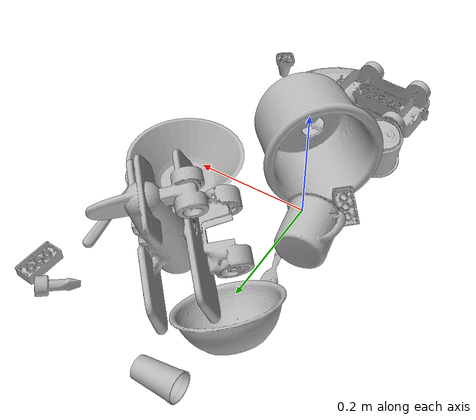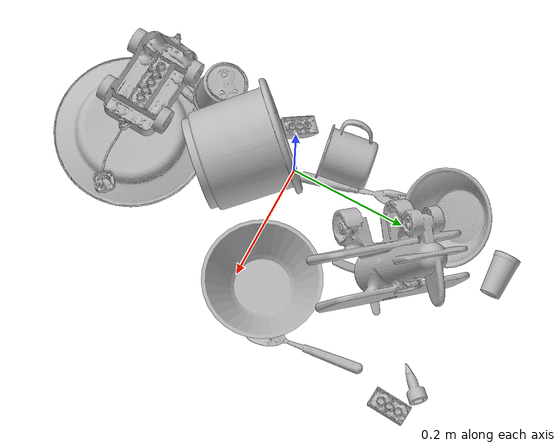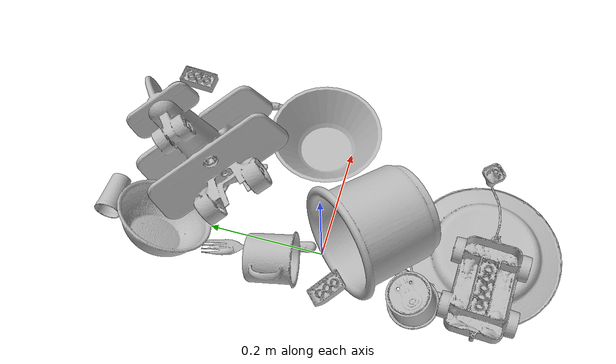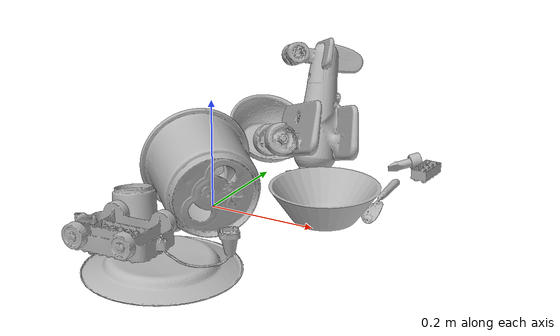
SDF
<sdf version="1.4">
  <world name="default">
    <light name="light1" type="point">
      <pose>0 0 1 0 0 0</pose>
      <diffuse>3 3 3 1</diffuse>
      <specular>3 3 3 1</specular>
    </light>
    <light name="light2" type="point">
      <pose>0 0.5 2 0 0 0</pose>
      <diffuse>1 1 1 1</diffuse>
      <specular>1 1 1 1</specular>
    </light>
    <light name="light3" type="point">
      <pose>0 0.5 2 0 0 0</pose>
      <diffuse>3 3 3 1</diffuse>
      <specular>3 3 3 1</specular>
    </light>
    <scene>
      <ambient>0.7 0.7 0.7</ambient>
    </scene>
    <model name="plate1">
      <link name="link_plate1">
        <collision name="default">
          <geometry>
            <mesh>
              <uri>model://plate/collision_meshes/collision.obj</uri>
              <scale>1.0 1.0 1.0</scale>
            </mesh>
          </geometry>
          <surface>
            <friction>
              <ode>
                <mu>0.5</mu>
                <mu2>0.5</mu2>
              </ode>
            </friction>
          <contact>
        <ode>
            <max_vel>0</max_vel>
            <min_depth>0.0001</min_depth>
            <kp>1e8</kp>
        </ode>
    </contact></surface>
        </collision>
        <visual name="default">
          <geometry>
            <mesh>
              <uri>model://plate/visual_meshes/visual.dae</uri>
              <scale>1.0 1.0 1.0</scale>
            </mesh>
          </geometry>
        </visual>
        <inertial>
          <mass>0.22833794355392456</mass>
          <pose>-0.000604461005423218 0.00027825840516015887 -0.0010561991948634386 0.0022188074693480237 -0.003225470002654536 0.4526028307495764</pose>
          <inertia>
            <ixx>0.0010681693</ixx>
            <iyy>0.0010579526</iyy>
            <izz>0.0020891798</izz>
            <ixy>0</ixy>
            <ixz>0</ixz>
            <iyz>0</iyz>
          </inertia>
        </inertial>
      </link>
      <pose>0.06969310343265533 -0.2687693238258362 0.013448810204863548 3.1414400193654908 -0.003168616341321804 2.7707951993928748</pose>
    </model>
    <model name="cup1">
      <link name="link_cup1">
        <collision name="default">
          <geometry>
            <mesh>
              <uri>model://i_cups/collision_meshes/collision.obj</uri>
              <scale>2.0 2.0 2.0</scale>
            </mesh>
          </geometry>
          <surface>
            <friction>
              <ode>
                <mu>0.5</mu>
                <mu2>0.5</mu2>
              </ode>
            </friction>
          <contact>
        <ode>
            <max_vel>0</max_vel>
            <min_depth>0.0001</min_depth>
            <kp>1e8</kp>
        </ode>
    </contact></surface>
        </collision>
        <visual name="default">
          <geometry>
            <mesh>
              <uri>model://i_cups/visual_meshes/visual.dae</uri>
              <scale>2.0 2.0 2.0</scale>
            </mesh>
          </geometry>
        </visual>
        <inertial>
          <mass>0.4681873917579651</mass>
          <pose>0.00022480281768366694 0.00033594679553061724 -0.001715805265121162 -0.028982833374769763 -0.039873302367341296 -0.3459182567321849</pose>
          <inertia>
            <ixx>0.0025928493</ixx>
            <iyy>0.0026156942</iyy>
            <izz>0.0028979292</izz>
            <ixy>0</ixy>
            <ixz>0</ixz>
            <iyz>0</iyz>
          </inertia>
        </inertial>
      </link>
      <pose>0.03518358990550041 -0.08204548805952072 0.09003017842769623 1.1089830732521964 1.2866918583978129 -2.7858019461776147</pose>
    </model>
    <model name="silverware1">
      <link name="link_silverware1">
        <collision name="default">
          <geometry>
            <mesh>
              <uri>model://fork/collision_meshes/collision.obj</uri>
              <scale>1.0 1.0 1.0</scale>
            </mesh>
          </geometry>
          <surface>
            <friction>
              <ode>
                <mu>0.5</mu>
                <mu2>0.5</mu2>
              </ode>
            </friction>
          <contact>
        <ode>
            <max_vel>0</max_vel>
            <min_depth>0.0001</min_depth>
            <kp>1e8</kp>
        </ode>
    </contact></surface>
        </collision>
        <visual name="default">
          <geometry>
            <mesh>
              <uri>model://fork/visual_meshes/visual.dae</uri>
              <scale>1.0 1.0 1.0</scale>
            </mesh>
          </geometry>
        </visual>
        <inertial>
          <mass>0.027571624144911766</mass>
          <pose>-0.02957003377377987 0.00046588233090005815 0.00032188609475269914 -0.013550958023284024 -0.010977835737993834 0.014453901364285019</pose>
          <inertia>
            <ixx>9.665413e-07</ixx>
            <iyy>7.198156e-05</iyy>
            <izz>7.24139e-05</izz>
            <ixy>0</ixy>
            <ixz>0</ixz>
            <iyz>0</iyz>
          </inertia>
        </inertial>
      </link>
      <pose>-0.017666148021817207 0.10724350810050964 0.005714460276067257 -0.18209713281753895 0.0248337688398305 1.8241166904947983</pose>
    </model>
    <model name="silverware2">
      <link name="link_silverware2">
        <collision name="default">
          <geometry>
            <mesh>
              <uri>model://spoon/collision_meshes/collision.obj</uri>
              <scale>1.0 1.0 1.0</scale>
            </mesh>
          </geometry>
          <surface>
            <friction>
              <ode>
                <mu>0.5</mu>
                <mu2>0.5</mu2>
              </ode>
            </friction>
          <contact>
        <ode>
            <max_vel>0</max_vel>
            <min_depth>0.0001</min_depth>
            <kp>1e8</kp>
        </ode>
    </contact></surface>
        </collision>
        <visual name="default">
          <geometry>
            <mesh>
              <uri>model://spoon/visual_meshes/visual.dae</uri>
              <scale>1.0 1.0 1.0</scale>
            </mesh>
          </geometry>
        </visual>
        <inertial>
          <mass>0.026229728013277054</mass>
          <pose>-0.005526318680495024 -0.001603417913429439 -0.0007271656068041921 0.03521671072465583 -0.039065837568760656 0.006150610113583586</pose>
          <inertia>
            <ixx>1.4589405e-06</ixx>
            <iyy>9.980327e-05</iyy>
            <izz>0.00010052276</izz>
            <ixy>0</ixy>
            <ixz>0</ixz>
            <iyz>0</iyz>
          </inertia>
        </inertial>
      </link>
      <pose>0.2582835257053375 0.15702052414417267 0.010201461613178253 -2.7145313872624484 -0.06175731713695301 -1.4279484366439132</pose>
    </model>
    <model name="silverware3">
      <link name="link_silverware3">
        <collision name="default">
          <geometry>
            <mesh>
              <uri>model://knife/collision_meshes/collision.obj</uri>
              <scale>1.0 1.0 1.0</scale>
            </mesh>
          </geometry>
          <surface>
            <friction>
              <ode>
                <mu>0.5</mu>
                <mu2>0.5</mu2>
              </ode>
            </friction>
          <contact>
        <ode>
            <max_vel>0</max_vel>
            <min_depth>0.0001</min_depth>
            <kp>1e8</kp>
        </ode>
    </contact></surface>
        </collision>
        <visual name="default">
          <geometry>
            <mesh>
              <uri>model://knife/visual_meshes/visual.dae</uri>
              <scale>1.0 1.0 1.0</scale>
            </mesh>
          </geometry>
        </visual>
        <inertial>
          <mass>0.02346421591937542</mass>
          <pose>-0.02378525584936142 0.0015275125624611974 5.062017953605391e-05 0.07305400797241687 0.017248417900584085 -0.007409820985288758</pose>
          <inertia>
            <ixx>6.6600956e-07</ixx>
            <iyy>9.0145724e-05</iyy>
            <izz>9.036023e-05</izz>
            <ixy>0</ixy>
            <ixz>0</ixz>
            <iyz>0</iyz>
          </inertia>
        </inertial>
      </link>
      <pose>-0.01926291175186634 -0.19640791416168213 0.012576187029480934 -0.12032206016254852 0.04762290398742195 1.2685622785960133</pose>
    </model>
    <model name="cup3">
      <link name="link_cup3">
        <collision name="default">
          <geometry>
            <mesh>
              <uri>model://g_cups/collision_meshes/collision.obj</uri>
              <scale>1.0 1.0 1.0</scale>
            </mesh>
          </geometry>
          <surface>
            <friction>
              <ode>
                <mu>0.5</mu>
                <mu2>0.5</mu2>
              </ode>
            </friction>
          <contact>
        <ode>
            <max_vel>0</max_vel>
            <min_depth>0.0001</min_depth>
            <kp>1e8</kp>
        </ode>
    </contact></surface>
        </collision>
        <visual name="default">
          <geometry>
            <mesh>
              <uri>model://g_cups/visual_meshes/visual.dae</uri>
              <scale>1.0 1.0 1.0</scale>
            </mesh>
          </geometry>
        </visual>
        <inertial>
          <mass>0.061065707355737686</mass>
          <pose>-0.0007946277037262917 -4.2064726585522294e-05 -0.002132938476279378 -0.21381528234109023 -0.31410608856426947 0.31118675593786127</pose>
          <inertia>
            <ixx>7.1277376e-05</ixx>
            <iyy>7.10349e-05</iyy>
            <izz>7.383109e-05</izz>
            <ixy>0</ixy>
            <ixz>0</ixz>
            <iyz>0</iyz>
          </inertia>
        </inertial>
      </link>
      <pose>-0.05374448373913765 -0.16386708617210388 0.04546467214822769 3.13267728312473 -0.22425178910575316 -0.773681547043648</pose>
    </model>
    <model name="cup4">
      <link name="link_cup4">
        <collision name="default">
          <geometry>
            <mesh>
              <uri>model://mug/collision_meshes/collision.obj</uri>
              <scale>1.0 1.0 1.0</scale>
            </mesh>
          </geometry>
          <surface>
            <friction>
              <ode>
                <mu>0.5</mu>
                <mu2>0.5</mu2>
              </ode>
            </friction>
          <contact>
        <ode>
            <max_vel>0</max_vel>
            <min_depth>0.0001</min_depth>
            <kp>1e8</kp>
        </ode>
    </contact></surface>
        </collision>
        <visual name="default">
          <geometry>
            <mesh>
              <uri>model://mug/visual_meshes/visual.dae</uri>
              <scale>1.0 1.0 1.0</scale>
            </mesh>
          </geometry>
        </visual>
        <inertial>
          <mass>0.23807048797607422</mass>
          <pose>0.009571674279868603 0.0008143257582560182 -0.010947330854833126 -0.1298314387661624 0.08737745525079747 0.05507303490292968</pose>
          <inertia>
            <ixx>0.00023648023</ixx>
            <iyy>0.0002641344</iyy>
            <izz>0.00030547503</izz>
            <ixy>0</ixy>
            <ixz>0</ixz>
            <iyz>0</iyz>
          </inertia>
        </inertial>
      </link>
      <pose>-0.055663544684648514 0.0721278041601181 0.05118050426244736 1.4543452935281964 0.7541521531045686 0.09283763501146737</pose>
    </model>
    <model name="cup5">
      <link name="link_cup5">
        <collision name="default">
          <geometry>
            <mesh>
              <uri>model://cup_small/collision_meshes/collision.obj</uri>
              <scale>1.0 1.0 1.0</scale>
            </mesh>
          </geometry>
          <surface>
            <friction>
              <ode>
                <mu>0.5</mu>
                <mu2>0.5</mu2>
              </ode>
            </friction>
          <contact>
        <ode>
            <max_vel>0</max_vel>
            <min_depth>0.0001</min_depth>
            <kp>1e8</kp>
        </ode>
    </contact></surface>
        </collision>
        <visual name="default">
          <geometry>
            <mesh>
              <uri>model://cup_small/visual_meshes/visual.dae</uri>
              <scale>1.0 1.0 1.0</scale>
            </mesh>
          </geometry>
        </visual>
        <inertial>
          <mass>0.034257128834724426</mass>
          <pose>0.00010482469951966777 -0.00033778377110138535 -0.01074282731860876 -0.011493012610900502 -0.015280351102743797 -0.5058271067899499</pose>
          <inertia>
            <ixx>2.0170073e-05</ixx>
            <iyy>2.0274121e-05</iyy>
            <izz>9.106847e-06</izz>
            <ixy>0</ixy>
            <ixz>0</ixz>
            <iyz>0</iyz>
          </inertia>
        </inertial>
      </link>
      <pose>0.004567975178360939 0.3778086304664612 0.019660605117678642 -1.4784681703984273 0.06221872346689639 1.6090375962654293</pose>
    </model>
    <model name="bowl1">
      <link name="link_bowl1">
        <collision name="default">
          <geometry>
            <mesh>
              <uri>model://bowl/collision_meshes/collision.obj</uri>
              <scale>1.0 1.0 1.0</scale>
            </mesh>
          </geometry>
          <surface>
            <friction>
              <ode>
                <mu>0.5</mu>
                <mu2>0.5</mu2>
              </ode>
            </friction>
          <contact>
        <ode>
            <max_vel>0</max_vel>
            <min_depth>0.0001</min_depth>
            <kp>1e8</kp>
        </ode>
    </contact></surface>
        </collision>
        <visual name="default">
          <geometry>
            <mesh>
              <uri>model://bowl/visual_meshes/visual.dae</uri>
              <scale>1.0 1.0 1.0</scale>
            </mesh>
          </geometry>
        </visual>
        <inertial>
          <mass>0.06465846300125122</mass>
          <pose>0.0002044529392151162 -0.0010302059818059206 -0.0008042643894441426 -0.015764115524798613 0.014546769889283702 0.7140385686011532</pose>
          <inertia>
            <ixx>0.00014852564</ixx>
            <iyy>0.000145207</iyy>
            <izz>0.00024987117</izz>
            <ixy>0</ixy>
            <ixz>0</ixz>
            <iyz>0</iyz>
          </inertia>
        </inertial>
      </link>
      <pose>-0.038986220955848694 0.2695768177509308 0.04801556095480919 -0.5710859297595957 -0.19989135898018903 -2.5102927440572675</pose>
    </model>
    <model name="bowl2">
      <link name="link_bowl2">
        <collision name="default">
          <geometry>
            <mesh>
              <uri>model://bowl_a/collision_meshes/collision.obj</uri>
              <scale>1.0 1.0 1.0</scale>
            </mesh>
          </geometry>
          <surface>
            <friction>
              <ode>
                <mu>0.5</mu>
                <mu2>0.5</mu2>
              </ode>
            </friction>
          <contact>
        <ode>
            <max_vel>0</max_vel>
            <min_depth>0.0001</min_depth>
            <kp>1e8</kp>
        </ode>
    </contact></surface>
        </collision>
        <visual name="default">
          <geometry>
            <mesh>
              <uri>model://bowl_a/visual_meshes/visual.dae</uri>
              <scale>1.0 1.0 1.0</scale>
            </mesh>
          </geometry>
        </visual>
        <inertial>
          <mass>0.4949932396411896</mass>
          <pose>0.00027867621975019574 4.730939326691441e-05 -0.0013765293406322598 -0.0009805412802391578 -0.001093824733375575 -0.19123603072484788</pose>
          <inertia>
            <ixx>0.0014092687</ixx>
            <iyy>0.0014179207</iyy>
            <izz>0.0025064375</izz>
            <ixy>0</ixy>
            <ixz>0</ixz>
            <iyz>0</iyz>
          </inertia>
        </inertial>
      </link>
      <pose>0.19969123601913452 0.04745861142873764 0.03038308396935463 1.8291246741327803e-07 7.689291244435916e-07 2.341692745668015</pose>
    </model>
    <model name="toy1">
      <link name="link_toy1">
        <collision name="default">
          <geometry>
            <mesh>
              <uri>model://a_toy_airplane/collision_meshes/collision.obj</uri>
              <scale>1.0 1.0 1.0</scale>
            </mesh>
          </geometry>
          <surface>
            <friction>
              <ode>
                <mu>0.5</mu>
                <mu2>0.5</mu2>
              </ode>
            </friction>
          <contact>
        <ode>
            <max_vel>0</max_vel>
            <min_depth>0.0001</min_depth>
            <kp>1e8</kp>
        </ode>
    </contact></surface>
        </collision>
        <visual name="default">
          <geometry>
            <mesh>
              <uri>model://a_toy_airplane/visual_meshes/visual.dae</uri>
              <scale>1.0 1.0 1.0</scale>
            </mesh>
          </geometry>
        </visual>
        <inertial>
          <mass>1.5726872682571411</mass>
          <pose>0.025165090337395668 -0.003707318101078272 -0.0011962441494688392 -0.012016975653996446 -0.14663502644886817 0.00414906395026872</pose>
          <inertia>
            <ixx>0.0057111816</ixx>
            <iyy>0.008322349</iyy>
            <izz>0.009744448</izz>
            <ixy>0</ixy>
            <ixz>0</ixz>
            <iyz>0</iyz>
          </inertia>
        </inertial>
      </link>
      <pose>0.0864298865199089 0.23891450464725494 0.12850803136825562 -2.367884634198422 1.0513658119057732 -1.6656802312694439</pose>
    </model>
    <model name="toy2">
      <link name="link_toy2">
        <collision name="default">
          <geometry>
            <mesh>
              <uri>model://g_lego_duplo/collision_meshes/collision.obj</uri>
              <scale>1.0 1.0 1.0</scale>
            </mesh>
          </geometry>
          <surface>
            <friction>
              <ode>
                <mu>0.5</mu>
                <mu2>0.5</mu2>
              </ode>
            </friction>
          <contact>
        <ode>
            <max_vel>0</max_vel>
            <min_depth>0.0001</min_depth>
            <kp>1e8</kp>
        </ode>
    </contact></surface>
        </collision>
        <visual name="default">
          <geometry>
            <mesh>
              <uri>model://g_lego_duplo/visual_meshes/visual.dae</uri>
              <scale>1.0 1.0 1.0</scale>
            </mesh>
          </geometry>
        </visual>
        <inertial>
          <mass>0.27239978313446045</mass>
          <pose>-0.05004768446087837 0.0017554647056385875 0.003880675882101059 0.010962999716487856 0.03810827607734427 -0.09653019061870628</pose>
          <inertia>
            <ixx>0.00039471043</ixx>
            <iyy>0.0011933373</iyy>
            <izz>0.0014929089</izz>
            <ixy>0</ixy>
            <ixz>0</ixz>
            <iyz>0</iyz>
          </inertia>
        </inertial>
      </link>
      <pose>0.052943188697099686 -0.2720448672771454 0.05274979770183563 3.136180057907663 -0.04143471480429164 -0.0400323256048902</pose>
    </model>
    <model name="toy3">
      <link name="link_toy3">
        <collision name="default">
          <geometry>
            <mesh>
              <uri>model://e_toy_airplane/collision_meshes/collision.obj</uri>
              <scale>1.0 1.0 1.0</scale>
            </mesh>
          </geometry>
          <surface>
            <friction>
              <ode>
                <mu>0.5</mu>
                <mu2>0.5</mu2>
              </ode>
            </friction>
          <contact>
        <ode>
            <max_vel>0</max_vel>
            <min_depth>0.0001</min_depth>
            <kp>1e8</kp>
        </ode>
    </contact></surface>
        </collision>
        <visual name="default">
          <geometry>
            <mesh>
              <uri>model://e_toy_airplane/visual_meshes/visual.dae</uri>
              <scale>1.0 1.0 1.0</scale>
            </mesh>
          </geometry>
        </visual>
        <inertial>
          <mass>0.02767481654882431</mass>
          <pose>0.00011740472837118432 -2.2482989152194932e-05 -0.011187202297151089 0.005518508312800945 0.009228282632666047 0.1504154330375105</pose>
          <inertia>
            <ixx>8.446671e-06</ixx>
            <iyy>8.360266e-06</iyy>
            <izz>2.5385568e-06</izz>
            <ixy>0</ixy>
            <ixz>0</ixz>
            <iyz>0</iyz>
          </inertia>
        </inertial>
      </link>
      <pose>0.22565129399299622 0.3354557454586029 0.01236478891223669 1.7532794577279953 0.37554155824774776 -0.7339694140272538</pose>
    </model>
    <model name="toy4">
      <link name="link_toy4">
        <collision name="default">
          <geometry>
            <mesh>
              <uri>model://c_lego_duplo/collision_meshes/collision.obj</uri>
              <scale>1.0 1.0 1.0</scale>
            </mesh>
          </geometry>
          <surface>
            <friction>
              <ode>
                <mu>0.5</mu>
                <mu2>0.5</mu2>
              </ode>
            </friction>
          <contact>
        <ode>
            <max_vel>0</max_vel>
            <min_depth>0.0001</min_depth>
            <kp>1e8</kp>
        </ode>
    </contact></surface>
        </collision>
        <visual name="default">
          <geometry>
            <mesh>
              <uri>model://c_lego_duplo/visual_meshes/visual.dae</uri>
              <scale>1.0 1.0 1.0</scale>
            </mesh>
          </geometry>
        </visual>
        <inertial>
          <mass>0.027596205472946167</mass>
          <pose>0.0003164597146678716 0.00019464619981590658 0.0010453155264258385 -0.011520800817134696 0.005900104067849837 0.03110033537421094</pose>
          <inertia>
            <ixx>1.0619538e-05</ixx>
            <iyy>3.3922634e-06</iyy>
            <izz>1.2410018e-05</izz>
            <ixy>0</ixy>
            <ixz>0</ixz>
            <iyz>0</iyz>
          </inertia>
        </inertial>
      </link>
      <pose>0.27791857719421387 0.320048063993454 0.01191659551113844 -3.135104586876491 -0.0003986829899718558 3.1014389784701883</pose>
    </model>
    <model name="toy5">
      <link name="link_toy5">
        <collision name="default">
          <geometry>
            <mesh>
              <uri>model://a_lego_duplo/collision_meshes/collision.obj</uri>
              <scale>1.0 1.0 1.0</scale>
            </mesh>
          </geometry>
          <surface>
            <friction>
              <ode>
                <mu>0.5</mu>
                <mu2>0.5</mu2>
              </ode>
            </friction>
          <contact>
        <ode>
            <max_vel>0</max_vel>
            <min_depth>0.0001</min_depth>
            <kp>1e8</kp>
        </ode>
    </contact></surface>
        </collision>
        <visual name="default">
          <geometry>
            <mesh>
              <uri>model://a_lego_duplo/visual_meshes/visual.dae</uri>
              <scale>1.0 1.0 1.0</scale>
            </mesh>
          </geometry>
        </visual>
        <inertial>
          <mass>0.011767913587391376</mass>
          <pose>-0.00011337622709106654 0.00018517576972953975 0.0003692608152050525 -0.0141170192796563 -0.00012565406274383194 6.140908251533293e-05</pose>
          <inertia>
            <ixx>1.5087408e-06</ixx>
            <iyy>3.3799095e-06</iyy>
            <izz>4.186769e-06</izz>
            <ixy>0</ixy>
            <ixz>0</ixz>
            <iyz>0</iyz>
          </inertia>
        </inertial>
      </link>
      <pose>-0.06204191595315933 -0.028727838769555092 0.01665743812918663 -3.129549697687732 -0.5433243904652805 -0.8210674940131759</pose>
    </model>
  <physics type="ode">
      <max_contacts>50</max_contacts>
      <ode>
        <solver>
          <type>quick</type>
          <iters>75</iters>
        </solver>
        <constraints>
          <contact_max_correcting_vel>0</contact_max_correcting_vel>
          <contact_surface_layer>0</contact_surface_layer>
        </constraints>
      </ode>
    </physics></world>
</sdf>
